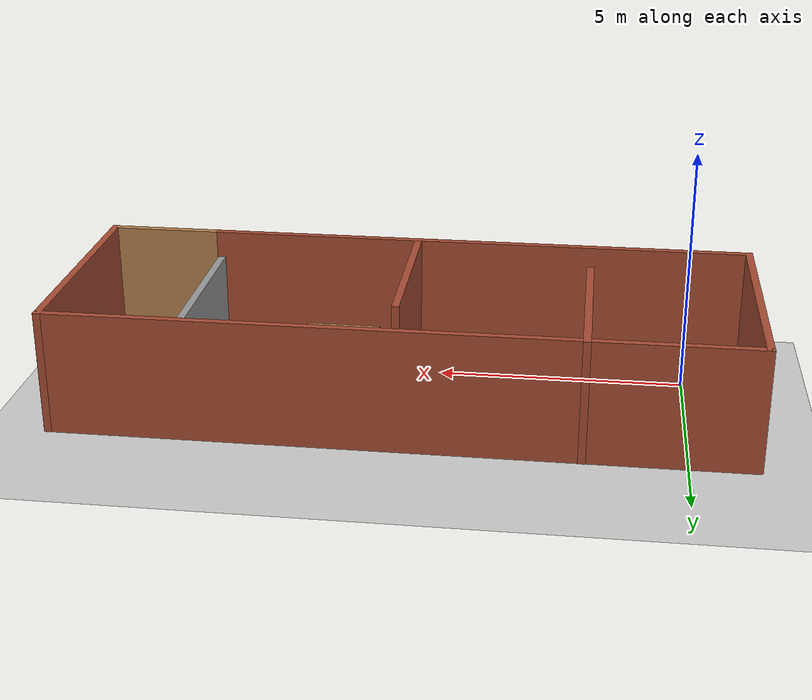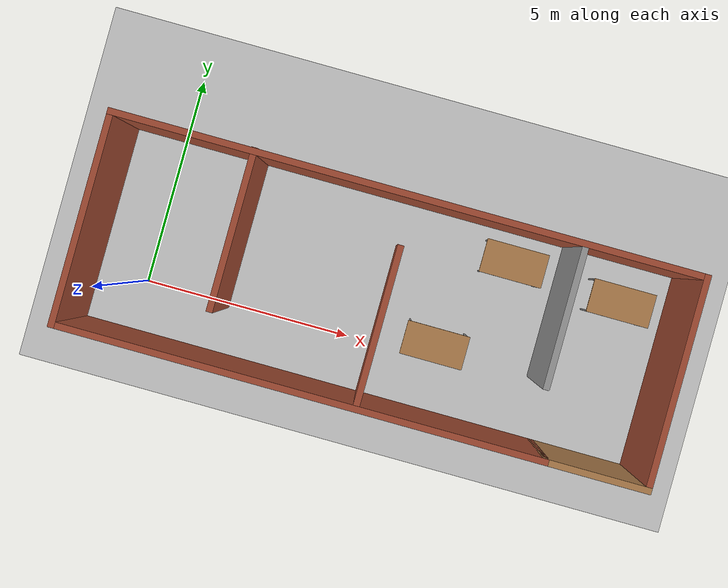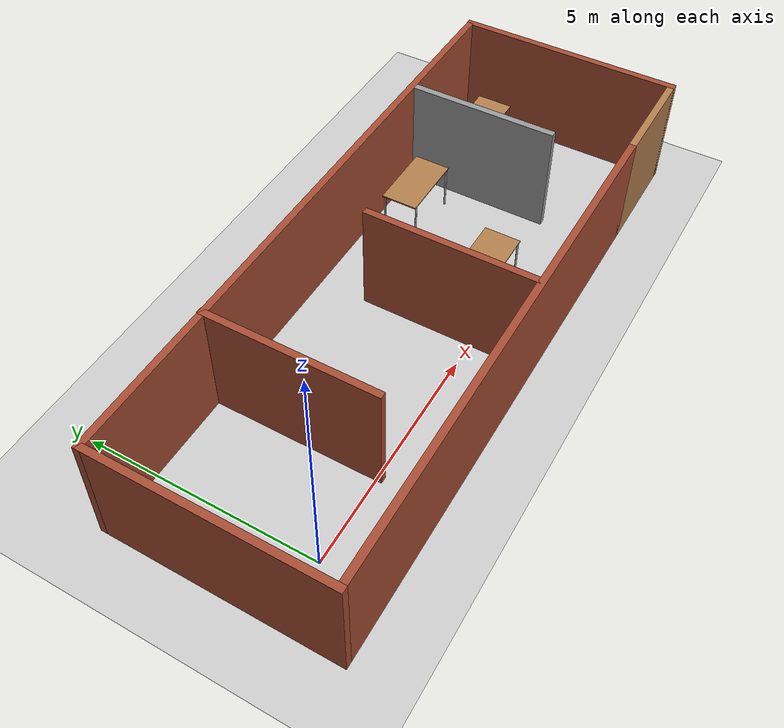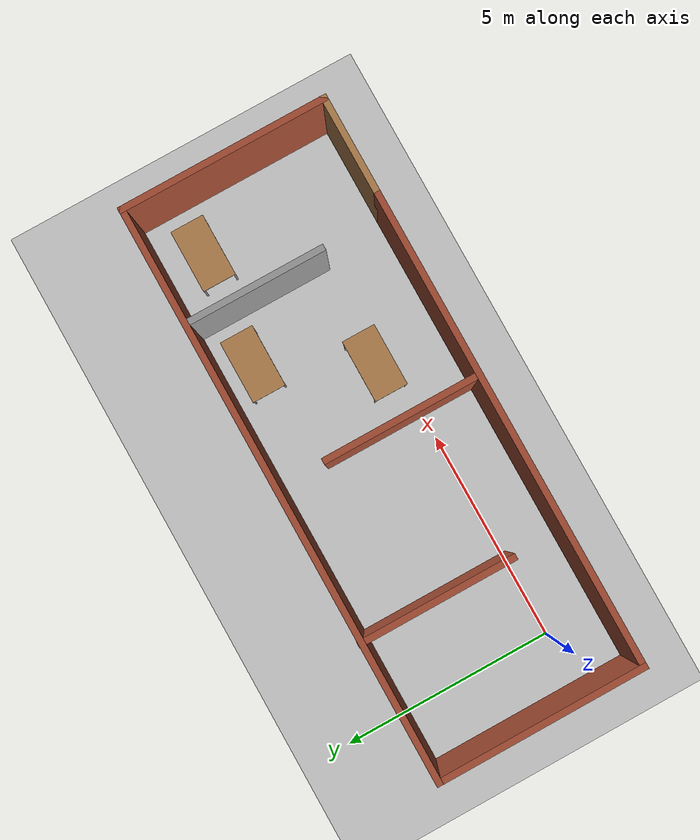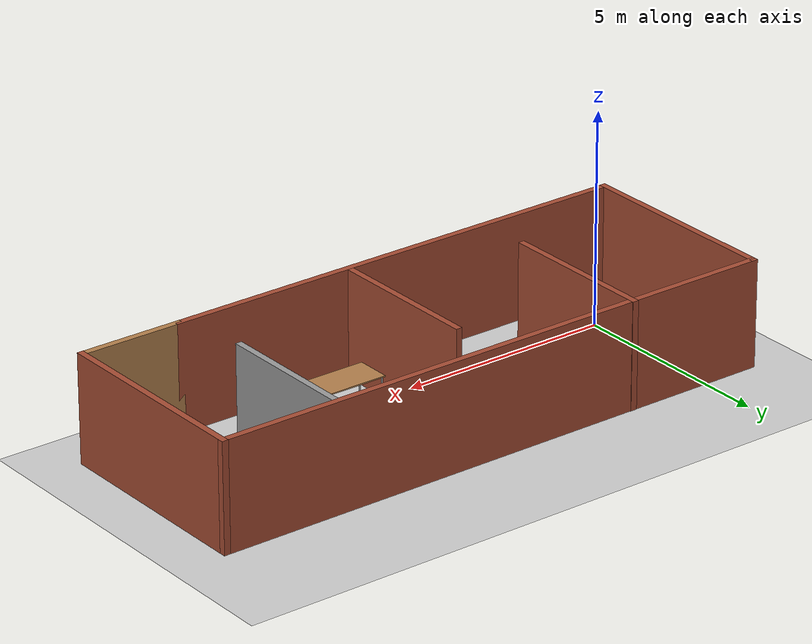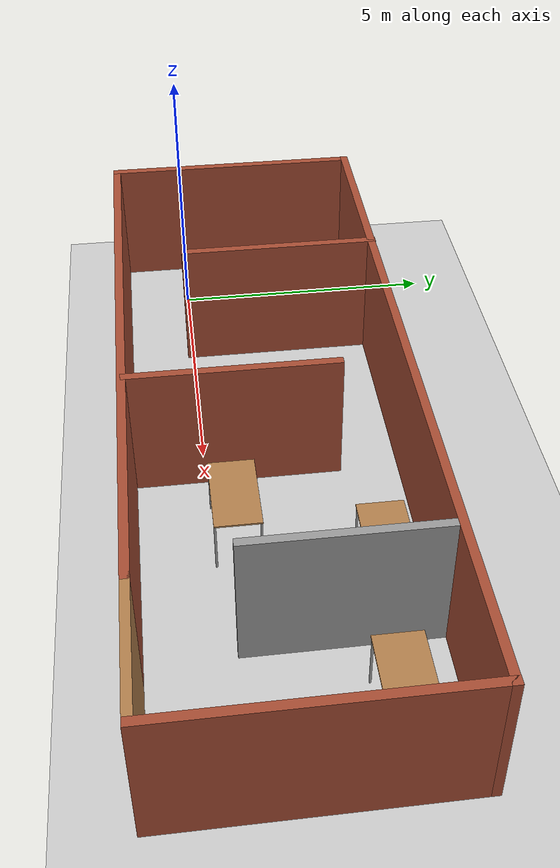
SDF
<sdf version="1.7">
 <world name="default">
  <light name="sun" type="directional">
   <pose>0 0 10 0 -0 0</pose>
   <diffuse>0.8 0.8 0.8 1</diffuse>
   <specular>0.2 0.2 0.2 1</specular>
   <attenuation>
    <range>1000</range>
    <constant>0.9</constant>
    <linear>0.01</linear>
    <quadratic>0.001</quadratic>
   </attenuation>
   <direction>-0.5 0.1 -0.9</direction>
   <spot><inner_angle>0</inner_angle><outer_angle>0</outer_angle><falloff>0</falloff></spot>
  </light>
  <model name="ground_plane">
   <static>1</static>
   <link name="link">
    <collision name="collision">
     <geometry><plane><normal>0 0 1</normal><size>100 100</size></plane></geometry>
     <surface><friction><ode><mu>100</mu><mu2>50</mu2></ode></friction></surface>
    </collision>
    <visual name="visual">
     <cast_shadows>0</cast_shadows>
     <geometry><plane><normal>0 0 1</normal><size>100 100</size></plane></geometry>
     <material>
      <script><uri>file://media/materials/scripts/gazebo.material</uri><name>Gazebo/Grey</name></script>
     </material>
    </visual>
   </link>
  </model>
  <gravity>0 0 -9.8</gravity>
  <magnetic_field>6e-06 2.3e-05 -4.2e-05</magnetic_field>
  <atmosphere type="adiabatic"/>
  <physics type="ode">
   <max_step_size>0.001</max_step_size>
   <real_time_factor>1</real_time_factor>
   <real_time_update_rate>1000</real_time_update_rate>
  </physics>
  <scene><ambient>0.4 0.4 0.4 1</ambient><background>0.7 0.7 0.7 1</background><shadows>1</shadows></scene>
  <audio><device>default</device></audio>
  <spherical_coordinates>
   <surface_model>EARTH_WGS84</surface_model>
   <latitude_deg>0</latitude_deg>
   <longitude_deg>0</longitude_deg>
   <elevation>0</elevation>
   <heading_deg>0</heading_deg>
  </spherical_coordinates>
  <model name="fr_cafe">
   <pose>5.50827 1.13734 0 0 -0 0</pose>
   <link name="Wall_0">
    <collision name="Wall_0_Collision">
     <geometry><box><size>11.25 0.15 2.5</size></box></geometry>
     <pose>0 0 1.25 0 -0 0</pose>
    </collision>
    <visual name="Wall_0_Visual">
     <pose>0 0 1.25 0 -0 0</pose>
     <geometry><box><size>11.25 0.15 2.5</size></box></geometry>
     <material>
      <script><uri>file://media/materials/scripts/gazebo.material</uri><name>Gazebo/Bricks</name></script>
      <ambient>1 1 1 1</ambient>
     </material>
     <meta><layer>0</layer></meta>
    </visual>
    <pose>-1.1 -2.43037 0 0 -0 0</pose>
   </link>
   <link name="Wall_10">
    <collision name="Wall_10_Collision">
     <geometry><box><size>3.75 0.15 2.5</size></box></geometry>
     <pose>0 0 1.25 0 -0 0</pose>
    </collision>
    <visual name="Wall_10_Visual">
     <pose>0 0 1.25 0 -0 0</pose>
     <geometry><box><size>3.75 0.15 2.5</size></box></geometry>
     <material>
      <script><uri>file://media/materials/scripts/gazebo.material</uri><name>Gazebo/Bricks</name></script>
      <ambient>1 1 1 1</ambient>
     </material>
     <meta><layer>0</layer></meta>
    </visual>
    <pose>0.126728 -0.570306 0 0 -0 1.5708</pose>
   </link>
   <link name="Wall_12">
    <collision name="Wall_12_Collision">
     <geometry><box><size>3.25 0.15 2.5</size></box></geometry>
     <pose>0 0 1.25 0 -0 0</pose>
    </collision>
    <visual name="Wall_12_Visual">
     <pose>0 0 1.25 0 -0 0</pose>
     <geometry><box><size>3.25 0.15 2.5</size></box></geometry>
     <material>
      <script><uri>file://media/materials/scripts/gazebo.material</uri><name>Gazebo/Grey</name></script>
      <ambient>1 1 1 1</ambient>
     </material>
     <meta><layer>0</layer></meta>
    </visual>
    <pose>4.04133 0.721669 0 0 -0 -1.5708</pose>
   </link>
   <link name="Wall_2">
    <collision name="Wall_2_Collision">
     <geometry><box><size>2.5 0.15 2.5</size></box></geometry>
     <pose>0 0 1.25 0 -0 0</pose>
    </collision>
    <visual name="Wall_2_Visual">
     <pose>0 0 1.25 0 -0 0</pose>
     <geometry><box><size>2.5 0.15 2.5</size></box></geometry>
     <material>
      <script><uri>file://media/materials/scripts/gazebo.material</uri><name>Gazebo/Wood</name></script>
      <ambient>1 1 1 1</ambient>
     </material>
     <meta><layer>0</layer></meta>
    </visual>
    <pose>5.625 -2.43037 0 0 -0 0</pose>
   </link>
   <link name="Wall_4">
    <collision name="Wall_4_Collision">
     <geometry><box><size>5 0.15 2.5</size></box></geometry>
     <pose>0 0 1.25 0 -0 0</pose>
    </collision>
    <visual name="Wall_4_Visual">
     <pose>0 0 1.25 0 -0 0</pose>
     <geometry><box><size>5 0.15 2.5</size></box></geometry>
     <material>
      <script><uri>file://media/materials/scripts/gazebo.material</uri><name>Gazebo/Bricks</name></script>
      <ambient>1 1 1 1</ambient>
     </material>
     <meta><layer>0</layer></meta>
    </visual>
    <pose>6.8 -0.005369 0 0 -0 1.5708</pose>
   </link>
   <link name="Wall_5">
    <collision name="Wall_5_Collision">
     <geometry><box><size>13.75 0.15 2.5</size></box></geometry>
     <pose>0 0 1.25 0 -0 0</pose>
    </collision>
    <visual name="Wall_5_Visual">
     <pose>0 0 1.25 0 -0 0</pose>
     <geometry><box><size>13.75 0.15 2.5</size></box></geometry>
     <material>
      <script><uri>file://media/materials/scripts/gazebo.material</uri><name>Gazebo/Bricks</name></script>
      <ambient>1 1 1 1</ambient>
     </material>
     <meta><layer>0</layer></meta>
    </visual>
    <pose>-0 2.41963 0 0 -0 3.14159</pose>
   </link>
   <link name="Wall_6">
    <collision name="Wall_6_Collision">
     <geometry><box><size>5 0.15 2.5</size></box></geometry>
     <pose>0 0 1.25 0 -0 0</pose>
    </collision>
    <visual name="Wall_6_Visual">
     <pose>0 0 1.25 0 -0 0</pose>
     <geometry><box><size>5 0.15 2.5</size></box></geometry>
     <material>
      <script><uri>file://media/materials/scripts/gazebo.material</uri><name>Gazebo/Bricks</name></script>
      <ambient>1 1 1 1</ambient>
     </material>
     <meta><layer>0</layer></meta>
    </visual>
    <pose>-6.8 -0.005369 0 0 -0 -1.5708</pose>
   </link>
   <link name="Wall_8">
    <collision name="Wall_8_Collision">
     <geometry><box><size>3.75 0.15 2.5</size></box></geometry>
     <pose>0 0 1.25 0 -0 0</pose>
    </collision>
    <visual name="Wall_8_Visual">
     <pose>0 0 1.25 0 -0 0</pose>
     <geometry><box><size>3.75 0.15 2.5</size></box></geometry>
     <material>
      <script><uri>file://media/materials/scripts/gazebo.material</uri><name>Gazebo/Bricks</name></script>
      <ambient>1 1 1 1</ambient>
     </material>
     <meta><layer>0</layer></meta>
    </visual>
    <pose>-3.5366 0.630369 0 0 -0 -1.5708</pose>
   </link>
   <static>1</static>
  </model>
  <model name="table">
   <static>1</static>
   <link name="link">
    <collision name="surface">
     <pose>0 0 1 0 -0 0</pose>
     <geometry><box><size>1.5 0.8 0.03</size></box></geometry>
     <surface><friction><ode><mu>0.6</mu><mu2>0.6</mu2></ode></friction></surface>
    </collision>
    <visual name="visual1">
     <pose>0 0 1 0 -0 0</pose>
     <geometry><box><size>1.5 0.8 0.03</size></box></geometry>
     <material>
      <script><uri>file://media/materials/scripts/gazebo.material</uri><name>Gazebo/Wood</name></script>
     </material>
    </visual>
    <collision name="front_left_leg">
     <pose>0.68 0.38 0.5 0 -0 0</pose>
     <geometry><cylinder><radius>0.02</radius><length>1</length></cylinder></geometry>
    </collision>
    <visual name="front_left_leg">
     <pose>0.68 0.38 0.5 0 -0 0</pose>
     <geometry><cylinder><radius>0.02</radius><length>1</length></cylinder></geometry>
     <material>
      <script><uri>file://media/materials/scripts/gazebo.material</uri><name>Gazebo/Grey</name></script>
     </material>
    </visual>
    <collision name="front_right_leg">
     <pose>0.68 -0.38 0.5 0 -0 0</pose>
     <geometry><cylinder><radius>0.02</radius><length>1</length></cylinder></geometry>
    </collision>
    <visual name="front_right_leg">
     <pose>0.68 -0.38 0.5 0 -0 0</pose>
     <geometry><cylinder><radius>0.02</radius><length>1</length></cylinder></geometry>
     <material>
      <script><uri>file://media/materials/scripts/gazebo.material</uri><name>Gazebo/Grey</name></script>
     </material>
    </visual>
    <collision name="back_right_leg">
     <pose>-0.68 -0.38 0.5 0 -0 0</pose>
     <geometry><cylinder><radius>0.02</radius><length>1</length></cylinder></geometry>
    </collision>
    <visual name="back_right_leg">
     <pose>-0.68 -0.38 0.5 0 -0 0</pose>
     <geometry><cylinder><radius>0.02</radius><length>1</length></cylinder></geometry>
     <material>
      <script><uri>file://media/materials/scripts/gazebo.material</uri><name>Gazebo/Grey</name></script>
     </material>
    </visual>
    <collision name="back_left_leg">
     <pose>-0.68 0.38 0.5 0 -0 0</pose>
     <geometry><cylinder><radius>0.02</radius><length>1</length></cylinder></geometry>
    </collision>
    <visual name="back_left_leg">
     <pose>-0.68 0.38 0.5 0 -0 0</pose>
     <geometry><cylinder><radius>0.02</radius><length>1</length></cylinder></geometry>
     <material>
      <script><uri>file://media/materials/scripts/gazebo.material</uri><name>Gazebo/Grey</name></script>
     </material>
    </visual>
   </link>
   <pose>8.32325 2.76639 0 0 -0 0</pose>
  </model>
  <model name="table_0">
   <static>1</static>
   <link name="link">
    <collision name="surface">
     <pose>0 0 1 0 -0 0</pose>
     <geometry><box><size>1.5 0.8 0.03</size></box></geometry>
     <surface><friction><ode><mu>0.6</mu><mu2>0.6</mu2></ode></friction></surface>
    </collision>
    <visual name="visual1">
     <pose>0 0 1 0 -0 0</pose>
     <geometry><box><size>1.5 0.8 0.03</size></box></geometry>
     <material>
      <script><uri>file://media/materials/scripts/gazebo.material</uri><name>Gazebo/Wood</name></script>
     </material>
    </visual>
    <collision name="front_left_leg">
     <pose>0.68 0.38 0.5 0 -0 0</pose>
     <geometry><cylinder><radius>0.02</radius><length>1</length></cylinder></geometry>
    </collision>
    <visual name="front_left_leg">
     <pose>0.68 0.38 0.5 0 -0 0</pose>
     <geometry><cylinder><radius>0.02</radius><length>1</length></cylinder></geometry>
     <material>
      <script><uri>file://media/materials/scripts/gazebo.material</uri><name>Gazebo/Grey</name></script>
     </material>
    </visual>
    <collision name="front_right_leg">
     <pose>0.68 -0.38 0.5 0 -0 0</pose>
     <geometry><cylinder><radius>0.02</radius><length>1</length></cylinder></geometry>
    </collision>
    <visual name="front_right_leg">
     <pose>0.68 -0.38 0.5 0 -0 0</pose>
     <geometry><cylinder><radius>0.02</radius><length>1</length></cylinder></geometry>
     <material>
      <script><uri>file://media/materials/scripts/gazebo.material</uri><name>Gazebo/Grey</name></script>
     </material>
    </visual>
    <collision name="back_right_leg">
     <pose>-0.68 -0.38 0.5 0 -0 0</pose>
     <geometry><cylinder><radius>0.02</radius><length>1</length></cylinder></geometry>
    </collision>
    <visual name="back_right_leg">
     <pose>-0.68 -0.38 0.5 0 -0 0</pose>
     <geometry><cylinder><radius>0.02</radius><length>1</length></cylinder></geometry>
     <material>
      <script><uri>file://media/materials/scripts/gazebo.material</uri><name>Gazebo/Grey</name></script>
     </material>
    </visual>
    <collision name="back_left_leg">
     <pose>-0.68 0.38 0.5 0 -0 0</pose>
     <geometry><cylinder><radius>0.02</radius><length>1</length></cylinder></geometry>
    </collision>
    <visual name="back_left_leg">
     <pose>-0.68 0.38 0.5 0 -0 0</pose>
     <geometry><cylinder><radius>0.02</radius><length>1</length></cylinder></geometry>
     <material>
      <script><uri>file://media/materials/scripts/gazebo.material</uri><name>Gazebo/Grey</name></script>
     </material>
    </visual>
   </link>
   <pose>7.04693 0.427396 0 0 -0 0</pose>
  </model>
  <model name="table_1">
   <static>1</static>
   <link name="link">
    <collision name="surface">
     <pose>0 0 1 0 -0 0</pose>
     <geometry><box><size>1.5 0.8 0.03</size></box></geometry>
     <surface><friction><ode><mu>0.6</mu><mu2>0.6</mu2></ode></friction></surface>
    </collision>
    <visual name="visual1">
     <pose>0 0 1 0 -0 0</pose>
     <geometry><box><size>1.5 0.8 0.03</size></box></geometry>
     <material>
      <script><uri>file://media/materials/scripts/gazebo.material</uri><name>Gazebo/Wood</name></script>
     </material>
    </visual>
    <collision name="front_left_leg">
     <pose>0.68 0.38 0.5 0 -0 0</pose>
     <geometry><cylinder><radius>0.02</radius><length>1</length></cylinder></geometry>
    </collision>
    <visual name="front_left_leg">
     <pose>0.68 0.38 0.5 0 -0 0</pose>
     <geometry><cylinder><radius>0.02</radius><length>1</length></cylinder></geometry>
     <material>
      <script><uri>file://media/materials/scripts/gazebo.material</uri><name>Gazebo/Grey</name></script>
     </material>
    </visual>
    <collision name="front_right_leg">
     <pose>0.68 -0.38 0.5 0 -0 0</pose>
     <geometry><cylinder><radius>0.02</radius><length>1</length></cylinder></geometry>
    </collision>
    <visual name="front_right_leg">
     <pose>0.68 -0.38 0.5 0 -0 0</pose>
     <geometry><cylinder><radius>0.02</radius><length>1</length></cylinder></geometry>
     <material>
      <script><uri>file://media/materials/scripts/gazebo.material</uri><name>Gazebo/Grey</name></script>
     </material>
    </visual>
    <collision name="back_right_leg">
     <pose>-0.68 -0.38 0.5 0 -0 0</pose>
     <geometry><cylinder><radius>0.02</radius><length>1</length></cylinder></geometry>
    </collision>
    <visual name="back_right_leg">
     <pose>-0.68 -0.38 0.5 0 -0 0</pose>
     <geometry><cylinder><radius>0.02</radius><length>1</length></cylinder></geometry>
     <material>
      <script><uri>file://media/materials/scripts/gazebo.material</uri><name>Gazebo/Grey</name></script>
     </material>
    </visual>
    <collision name="back_left_leg">
     <pose>-0.68 0.38 0.5 0 -0 0</pose>
     <geometry><cylinder><radius>0.02</radius><length>1</length></cylinder></geometry>
    </collision>
    <visual name="back_left_leg">
     <pose>-0.68 0.38 0.5 0 -0 0</pose>
     <geometry><cylinder><radius>0.02</radius><length>1</length></cylinder></geometry>
     <material>
      <script><uri>file://media/materials/scripts/gazebo.material</uri><name>Gazebo/Grey</name></script>
     </material>
    </visual>
   </link>
   <pose>10.9851 2.53913 0 0 -0 0</pose>
  </model>
 </world>
</sdf>
